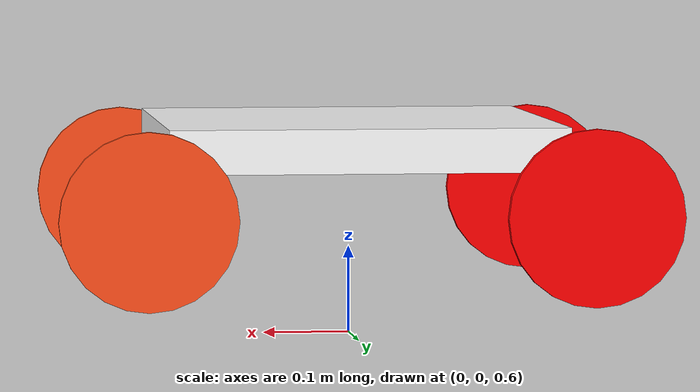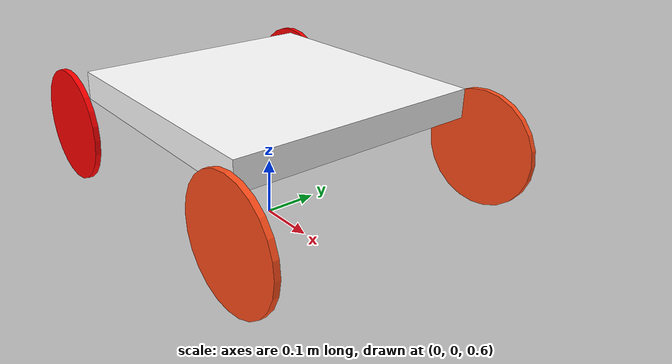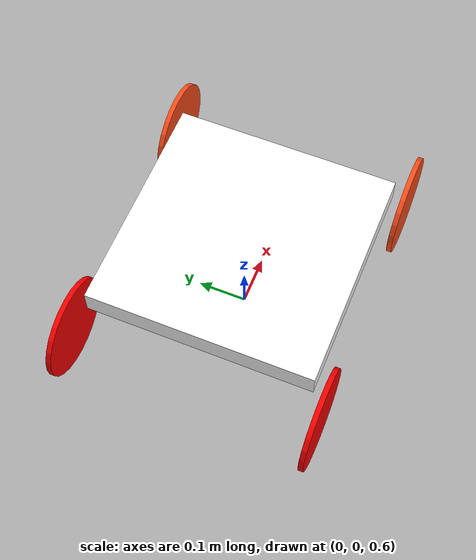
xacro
<?xml version="1.0"?>
<robot xmlns:xacro="http://www.ros.org/wiki/xacro" >
    <material name="white">
        <color rgba="1 1 1 1" />
    </material>

    <material name="orange">
        <color rgba="1 0.3 0.1 1"/>
    </material>

    <material name="blue">
        <color rgba="0.2 0.2 1 1"/>
    </material>

    <material name="black">
        <color rgba="0 0 0 1"/>
    </material>

    <material name="red">
        <color rgba="1 0 0 1"/>
    </material>

    <!-- BASE LINK -->

    <link name="base_link">
    </link>

    <joint name="chassis_joint" type="fixed">
        <parent link="base_link"/>
        <child link="chassis"/>
        <origin xyz="0 0 0.75" rpy="0 0 0"/>
    </joint>

    <link name="chassis">
        <visual>
            <origin xyz="0 0 0.075" rpy="0 0 0"/>
            <geometry>
                <box size="0.451 0.451 0.05"/>
            </geometry>
            <material name="white"/>
        </visual>
        <collision>
            <origin xyz="0 0 0.075" rpy="0 0 0"/>
            <geometry>
                <box size="0.451 0.451 0.05"/>
            </geometry>
        </collision>
        <xacro:inertial_box mass="0.451" x="0.451" y="0.451" z="0.05">
            <origin xyz="0 0 0.075" rpy="0 0 0"/>
        </xacro:inertial_box>
    </link>
    <gazebo reference="chassis">
        <material>Gazebo/White</material>
    </gazebo>

    <!-- BASE_FOOTPRINT LINK -->
    <joint name="base_footprint_joint" type="fixed">
        <parent link="base_link"/>
        <child link="base_footprint"/>
        <origin xyz="0 0 0" rpy="0 0 0"/>
    </joint>

    <link name="base_footprint">
    </link>

    <!-- LEFT FRONT WHEEL -->

    <joint name="left_wheel_joint" type="continuous">
        <parent link="chassis"/>
        <child link="left_wheel"/>
        <origin xyz="0.25 0.25 0" rpy="-${pi/2} 0 0"/>
        <axis xyz="0 0 1"/>
    </joint>

    <link name="left_wheel">
        <visual>
            <geometry>
                <cylinder length="0.01" radius="0.1" />
            </geometry>
            <material name="orange"/>
        </visual>
        <collision>
            <geometry>
                <cylinder length="0.01" radius="0.1" />
            </geometry>
        </collision>
        <xacro:inertial_cylinder mass="0.1" length="0.01" radius="0.1">
            <origin xyz="0 0 0" rpy="0 0 0"/>
        </xacro:inertial_cylinder>
    </link>
    <gazebo reference="left_wheel">
        <material>Gazebo/Orange</material>
    </gazebo>

    <!-- LEFT REAR WHEEL -->
    <joint name="left_wheel1_joint" type="continuous">
        <parent link="chassis"/>
        <child link="left_wheel1"/>
        <origin xyz="0.25 -0.25 0" rpy="-${pi/2} 0 0"/>
        <axis xyz="0 0 1"/>
    </joint>

    <link name="left_wheel1">
        <visual>
            <geometry>
                <cylinder length="0.01" radius="0.1" />
            </geometry>
            <material name="orange"/>
        </visual>
        <collision>
            <geometry>
                <cylinder length="0.01" radius="0.1" />
            </geometry>
        </collision>
        <xacro:inertial_cylinder mass="0.1" length="0.01" radius="0.1">
            <origin xyz="0 0 0" rpy="0 0 0"/>
        </xacro:inertial_cylinder>
    </link>
    <gazebo reference="left_wheel1">
        <material>Gazebo/Orange</material>
    </gazebo>

    <!-- RIGHT FRONT WHEEL -->
    <joint name="right_wheel_joint" type="continuous">
        <parent link="chassis"/>
        <child link="right_wheel"/>
        <origin xyz="-0.25 0.25 0" rpy="${pi/2} 0 0"/>
        <axis xyz="0 0 -1"/>
    </joint>

    <link name="right_wheel">
        <visual>
            <geometry>
                <cylinder length="0.01" radius="0.1" />
            </geometry>
            <material name="red"/>
        </visual>
        <collision>
            <geometry>
                <cylinder length="0.01" radius="0.1" />
            </geometry>
        </collision>
        <xacro:inertial_cylinder mass="0.1" length="0.01" radius="0.1">
            <origin xyz="0 0 0" rpy="0 0 0"/>
        </xacro:inertial_cylinder>
    </link>
    <gazebo reference="right_wheel">
        <material>Gazebo/Red</material>
    </gazebo>

    <!-- RIGHT REAR WHEEL -->
    <joint name="right_wheel1_joint" type="continuous">
        <parent link="chassis"/>
        <child link="right_wheel1"/>
        <origin xyz="-0.25 -0.25 0" rpy="${pi/2} 0 0"/>
        <axis xyz="0 0 -1"/>
    </joint>

    <link name="right_wheel1">
        <visual>
            <geometry>
                <cylinder length="0.01" radius="0.1" />
            </geometry>
            <material name="red"/>
        </visual>
        <collision>
            <geometry>
                <cylinder length="0.01" radius="0.1" />
            </geometry>
        </collision>
        <xacro:inertial_cylinder mass="0.1" length="0.01" radius="0.1">
            <origin xyz="0 0 0" rpy="0 0 0"/>
        </xacro:inertial_cylinder>
    </link>
    <gazebo reference="right_wheel1">
        <material>Gazebo/Red</material>
    </gazebo>

    <!-- CASTER WHEEL -->

</robot>
